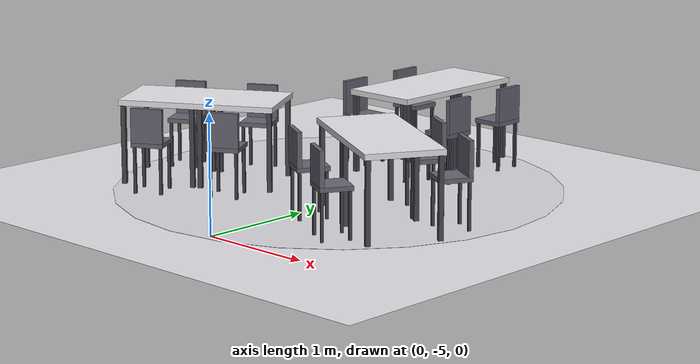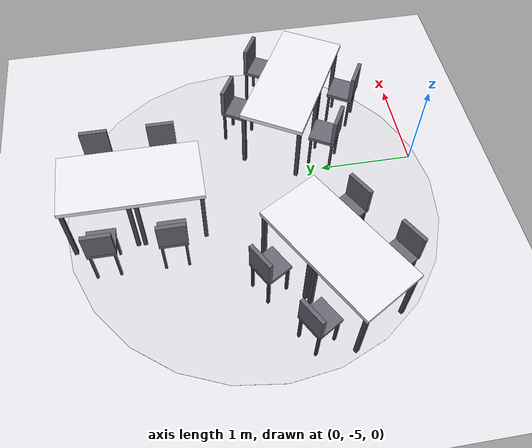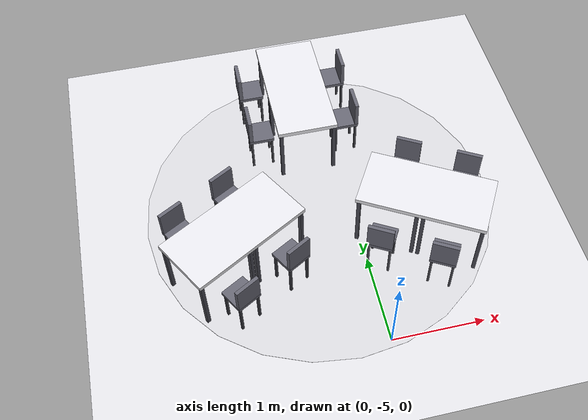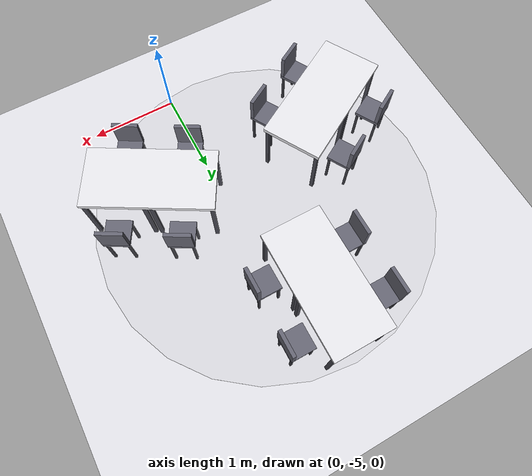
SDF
<sdf version="1.8">
 <world name="restaurant_blueprint_world">
  <model name="ground_plane">
   <static>true</static>
   <link name="link">
    <collision name="collision">
     <geometry><plane><normal>0 0 1</normal><size>120 120</size></plane></geometry>
    </collision>
    <visual name="visual">
     <geometry><plane><normal>0 0 1</normal><size>120 120</size></plane></geometry>
     <material>
      <ambient>0.88 0.88 0.90 1</ambient>
      <diffuse>0.88 0.88 0.90 1</diffuse>
      <specular>0.1 0.1 0.1 1</specular>
     </material>
    </visual>
   </link>
  </model>
  <model name="restaurant_boundary">
   <static>true</static>
   <link name="dining_cluster_circle">
    <visual name="virtual_circle_disc_vis">
     <pose>-0.349 -3.176 0.003 0 0 0</pose>
     <geometry><cylinder><radius>1.95</radius><length>0.002</length></cylinder></geometry>
     <material><ambient>0.84 0.84 0.86 1</ambient><diffuse>0.84 0.84 0.86 1</diffuse></material>
    </visual>
    <visual name="cluster_table_n_vis">
     <pose>-0.349 -1.986 0.725 0.0000 0.0000 0.0000</pose>
     <geometry><box><size>0.67 1.38 0.05</size></box></geometry>
     <material><ambient>0.85 0.85 0.88 1</ambient><diffuse>0.90 0.90 0.92 1</diffuse></material>
    </visual>
    <visual name="cluster_table_n_leg_1_vis">
     <pose>-0.049 -1.331 0.350 0 0 0.0000</pose>
     <geometry><box><size>0.04 0.04 0.70</size></box></geometry>
     <material><ambient>0.22 0.22 0.25 1</ambient><diffuse>0.28 0.28 0.32 1</diffuse></material>
    </visual>
    <visual name="cluster_table_n_leg_2_vis">
     <pose>-0.649 -1.331 0.350 0 0 0.0000</pose>
     <geometry><box><size>0.04 0.04 0.70</size></box></geometry>
     <material><ambient>0.22 0.22 0.25 1</ambient><diffuse>0.28 0.28 0.32 1</diffuse></material>
    </visual>
    <visual name="cluster_table_n_leg_3_vis">
     <pose>-0.049 -1.951 0.350 0 0 0.0000</pose>
     <geometry><box><size>0.04 0.04 0.70</size></box></geometry>
     <material><ambient>0.22 0.22 0.25 1</ambient><diffuse>0.28 0.28 0.32 1</diffuse></material>
    </visual>
    <visual name="cluster_table_n_leg_4_vis">
     <pose>-0.649 -1.951 0.350 0 0 0.0000</pose>
     <geometry><box><size>0.04 0.04 0.70</size></box></geometry>
     <material><ambient>0.22 0.22 0.25 1</ambient><diffuse>0.28 0.28 0.32 1</diffuse></material>
    </visual>
    <visual name="cluster_table_n_leg_5_vis">
     <pose>-0.049 -2.021 0.350 0 0 0.0000</pose>
     <geometry><box><size>0.04 0.04 0.70</size></box></geometry>
     <material><ambient>0.22 0.22 0.25 1</ambient><diffuse>0.28 0.28 0.32 1</diffuse></material>
    </visual>
    <visual name="cluster_table_n_leg_6_vis">
     <pose>-0.649 -2.021 0.350 0 0 0.0000</pose>
     <geometry><box><size>0.04 0.04 0.70</size></box></geometry>
     <material><ambient>0.22 0.22 0.25 1</ambient><diffuse>0.28 0.28 0.32 1</diffuse></material>
    </visual>
    <visual name="cluster_table_n_leg_7_vis">
     <pose>-0.049 -2.641 0.350 0 0 0.0000</pose>
     <geometry><box><size>0.04 0.04 0.70</size></box></geometry>
     <material><ambient>0.22 0.22 0.25 1</ambient><diffuse>0.28 0.28 0.32 1</diffuse></material>
    </visual>
    <visual name="cluster_table_n_leg_8_vis">
     <pose>-0.649 -2.641 0.350 0 0 0.0000</pose>
     <geometry><box><size>0.04 0.04 0.70</size></box></geometry>
     <material><ambient>0.22 0.22 0.25 1</ambient><diffuse>0.28 0.28 0.32 1</diffuse></material>
    </visual>
    <collision name="cluster_table_n_col">
     <pose>-0.349 -1.986 0.725 0.0000 0.0000 0.0000</pose>
     <geometry><box><size>0.67 1.38 0.05</size></box></geometry>
    </collision>
    <collision name="cluster_table_n_leg_1_col">
     <pose>-0.049 -1.331 0.350 0 0 0.0000</pose>
     <geometry><box><size>0.04 0.04 0.70</size></box></geometry>
    </collision>
    <collision name="cluster_table_n_leg_2_col">
     <pose>-0.649 -1.331 0.350 0 0 0.0000</pose>
     <geometry><box><size>0.04 0.04 0.70</size></box></geometry>
    </collision>
    <collision name="cluster_table_n_leg_3_col">
     <pose>-0.049 -1.951 0.350 0 0 0.0000</pose>
     <geometry><box><size>0.04 0.04 0.70</size></box></geometry>
    </collision>
    <collision name="cluster_table_n_leg_4_col">
     <pose>-0.649 -1.951 0.350 0 0 0.0000</pose>
     <geometry><box><size>0.04 0.04 0.70</size></box></geometry>
    </collision>
    <collision name="cluster_table_n_leg_5_col">
     <pose>-0.049 -2.021 0.350 0 0 0.0000</pose>
     <geometry><box><size>0.04 0.04 0.70</size></box></geometry>
    </collision>
    <collision name="cluster_table_n_leg_6_col">
     <pose>-0.649 -2.021 0.350 0 0 0.0000</pose>
     <geometry><box><size>0.04 0.04 0.70</size></box></geometry>
    </collision>
    <collision name="cluster_table_n_leg_7_col">
     <pose>-0.049 -2.641 0.350 0 0 0.0000</pose>
     <geometry><box><size>0.04 0.04 0.70</size></box></geometry>
    </collision>
    <collision name="cluster_table_n_leg_8_col">
     <pose>-0.649 -2.641 0.350 0 0 0.0000</pose>
     <geometry><box><size>0.04 0.04 0.70</size></box></geometry>
    </collision>
    <visual name="cluster_chair_n_e1_seat_vis">
     <pose>0.147 -1.651 0.430 0.0000 0.0000 0.0000</pose>
     <geometry><box><size>0.28 0.28 0.04</size></box></geometry>
     <material><ambient>0.30 0.30 0.33 1</ambient><diffuse>0.40 0.40 0.45 1</diffuse></material>
    </visual>
    <visual name="cluster_chair_n_e1_back_vis">
     <pose>0.267 -1.651 0.600 0 0 0.0000</pose>
     <geometry><box><size>0.04 0.28 0.30</size></box></geometry>
     <material><ambient>0.30 0.30 0.33 1</ambient><diffuse>0.40 0.40 0.45 1</diffuse></material>
    </visual>
    <visual name="cluster_chair_n_e1_leg_1_vis">
     <pose>0.262 -1.536 0.205 0 0 0.0000</pose>
     <geometry><box><size>0.025 0.025 0.41</size></box></geometry>
     <material><ambient>0.20 0.20 0.22 1</ambient><diffuse>0.25 0.25 0.28 1</diffuse></material>
    </visual>
    <visual name="cluster_chair_n_e1_leg_2_vis">
     <pose>0.032 -1.536 0.205 0 0 0.0000</pose>
     <geometry><box><size>0.025 0.025 0.41</size></box></geometry>
     <material><ambient>0.20 0.20 0.22 1</ambient><diffuse>0.25 0.25 0.28 1</diffuse></material>
    </visual>
    <visual name="cluster_chair_n_e1_leg_3_vis">
     <pose>0.262 -1.766 0.205 0 0 0.0000</pose>
     <geometry><box><size>0.025 0.025 0.41</size></box></geometry>
     <material><ambient>0.20 0.20 0.22 1</ambient><diffuse>0.25 0.25 0.28 1</diffuse></material>
    </visual>
    <visual name="cluster_chair_n_e1_leg_4_vis">
     <pose>0.032 -1.766 0.205 0 0 0.0000</pose>
     <geometry><box><size>0.025 0.025 0.41</size></box></geometry>
     <material><ambient>0.20 0.20 0.22 1</ambient><diffuse>0.25 0.25 0.28 1</diffuse></material>
    </visual>
    <collision name="cluster_chair_n_e1_seat_col">
     <pose>0.147 -1.651 0.430 0.0000 0.0000 0.0000</pose>
     <geometry><box><size>0.28 0.28 0.04</size></box></geometry>
    </collision>
    <collision name="cluster_chair_n_e1_back_col">
     <pose>0.267 -1.651 0.600 0 0 0.0000</pose>
     <geometry><box><size>0.04 0.28 0.30</size></box></geometry>
    </collision>
    <collision name="cluster_chair_n_e1_leg_1_col">
     <pose>0.262 -1.536 0.205 0 0 0.0000</pose>
     <geometry><box><size>0.025 0.025 0.41</size></box></geometry>
    </collision>
    <collision name="cluster_chair_n_e1_leg_2_col">
     <pose>0.032 -1.536 0.205 0 0 0.0000</pose>
     <geometry><box><size>0.025 0.025 0.41</size></box></geometry>
    </collision>
    <collision name="cluster_chair_n_e1_leg_3_col">
     <pose>0.262 -1.766 0.205 0 0 0.0000</pose>
     <geometry><box><size>0.025 0.025 0.41</size></box></geometry>
    </collision>
    <collision name="cluster_chair_n_e1_leg_4_col">
     <pose>0.032 -1.766 0.205 0 0 0.0000</pose>
     <geometry><box><size>0.025 0.025 0.41</size></box></geometry>
    </collision>
    <visual name="cluster_chair_n_e2_seat_vis">
     <pose>0.147 -2.321 0.430 0.0000 0.0000 0.0000</pose>
     <geometry><box><size>0.28 0.28 0.04</size></box></geometry>
     <material><ambient>0.30 0.30 0.33 1</ambient><diffuse>0.40 0.40 0.45 1</diffuse></material>
    </visual>
    <visual name="cluster_chair_n_e2_back_vis">
     <pose>0.267 -2.321 0.600 0 0 0.0000</pose>
     <geometry><box><size>0.04 0.28 0.30</size></box></geometry>
     <material><ambient>0.30 0.30 0.33 1</ambient><diffuse>0.40 0.40 0.45 1</diffuse></material>
    </visual>
    <visual name="cluster_chair_n_e2_leg_1_vis">
     <pose>0.262 -2.206 0.205 0 0 0.0000</pose>
     <geometry><box><size>0.025 0.025 0.41</size></box></geometry>
     <material><ambient>0.20 0.20 0.22 1</ambient><diffuse>0.25 0.25 0.28 1</diffuse></material>
    </visual>
    <visual name="cluster_chair_n_e2_leg_2_vis">
     <pose>0.032 -2.206 0.205 0 0 0.0000</pose>
     <geometry><box><size>0.025 0.025 0.41</size></box></geometry>
     <material><ambient>0.20 0.20 0.22 1</ambient><diffuse>0.25 0.25 0.28 1</diffuse></material>
    </visual>
    <visual name="cluster_chair_n_e2_leg_3_vis">
     <pose>0.262 -2.436 0.205 0 0 0.0000</pose>
     <geometry><box><size>0.025 0.025 0.41</size></box></geometry>
     <material><ambient>0.20 0.20 0.22 1</ambient><diffuse>0.25 0.25 0.28 1</diffuse></material>
    </visual>
    <visual name="cluster_chair_n_e2_leg_4_vis">
     <pose>0.032 -2.436 0.205 0 0 0.0000</pose>
     <geometry><box><size>0.025 0.025 0.41</size></box></geometry>
     <material><ambient>0.20 0.20 0.22 1</ambient><diffuse>0.25 0.25 0.28 1</diffuse></material>
    </visual>
    <collision name="cluster_chair_n_e2_seat_col">
     <pose>0.147 -2.321 0.430 0.0000 0.0000 0.0000</pose>
     <geometry><box><size>0.28 0.28 0.04</size></box></geometry>
    </collision>
    <collision name="cluster_chair_n_e2_back_col">
     <pose>0.267 -2.321 0.600 0 0 0.0000</pose>
     <geometry><box><size>0.04 0.28 0.30</size></box></geometry>
    </collision>
    <collision name="cluster_chair_n_e2_leg_1_col">
     <pose>0.262 -2.206 0.205 0 0 0.0000</pose>
     <geometry><box><size>0.025 0.025 0.41</size></box></geometry>
    </collision>
    <collision name="cluster_chair_n_e2_leg_2_col">
     <pose>0.032 -2.206 0.205 0 0 0.0000</pose>
     <geometry><box><size>0.025 0.025 0.41</size></box></geometry>
    </collision>
    <collision name="cluster_chair_n_e2_leg_3_col">
     <pose>0.262 -2.436 0.205 0 0 0.0000</pose>
     <geometry><box><size>0.025 0.025 0.41</size></box></geometry>
    </collision>
    <collision name="cluster_chair_n_e2_leg_4_col">
     <pose>0.032 -2.436 0.205 0 0 0.0000</pose>
     <geometry><box><size>0.025 0.025 0.41</size></box></geometry>
    </collision>
    <visual name="cluster_chair_n_w1_seat_vis">
     <pose>-0.845 -1.651 0.430 0.0000 0.0000 0.0000</pose>
     <geometry><box><size>0.28 0.28 0.04</size></box></geometry>
     <material><ambient>0.30 0.30 0.33 1</ambient><diffuse>0.40 0.40 0.45 1</diffuse></material>
    </visual>
    <visual name="cluster_chair_n_w1_back_vis">
     <pose>-0.965 -1.651 0.600 0 0 0.0000</pose>
     <geometry><box><size>0.04 0.28 0.30</size></box></geometry>
     <material><ambient>0.30 0.30 0.33 1</ambient><diffuse>0.40 0.40 0.45 1</diffuse></material>
    </visual>
    <visual name="cluster_chair_n_w1_leg_1_vis">
     <pose>-0.730 -1.536 0.205 0 0 0.0000</pose>
     <geometry><box><size>0.025 0.025 0.41</size></box></geometry>
     <material><ambient>0.20 0.20 0.22 1</ambient><diffuse>0.25 0.25 0.28 1</diffuse></material>
    </visual>
    <visual name="cluster_chair_n_w1_leg_2_vis">
     <pose>-0.960 -1.536 0.205 0 0 0.0000</pose>
     <geometry><box><size>0.025 0.025 0.41</size></box></geometry>
     <material><ambient>0.20 0.20 0.22 1</ambient><diffuse>0.25 0.25 0.28 1</diffuse></material>
    </visual>
    <visual name="cluster_chair_n_w1_leg_3_vis">
     <pose>-0.730 -1.766 0.205 0 0 0.0000</pose>
     <geometry><box><size>0.025 0.025 0.41</size></box></geometry>
     <material><ambient>0.20 0.20 0.22 1</ambient><diffuse>0.25 0.25 0.28 1</diffuse></material>
    </visual>
    <visual name="cluster_chair_n_w1_leg_4_vis">
     <pose>-0.960 -1.766 0.205 0 0 0.0000</pose>
     <geometry><box><size>0.025 0.025 0.41</size></box></geometry>
     <material><ambient>0.20 0.20 0.22 1</ambient><diffuse>0.25 0.25 0.28 1</diffuse></material>
    </visual>
    <collision name="cluster_chair_n_w1_seat_col">
     <pose>-0.845 -1.651 0.430 0.0000 0.0000 0.0000</pose>
     <geometry><box><size>0.28 0.28 0.04</size></box></geometry>
    </collision>
    <collision name="cluster_chair_n_w1_back_col">
     <pose>-0.965 -1.651 0.600 0 0 0.0000</pose>
     <geometry><box><size>0.04 0.28 0.30</size></box></geometry>
    </collision>
    <collision name="cluster_chair_n_w1_leg_1_col">
     <pose>-0.730 -1.536 0.205 0 0 0.0000</pose>
     <geometry><box><size>0.025 0.025 0.41</size></box></geometry>
    </collision>
    <collision name="cluster_chair_n_w1_leg_2_col">
     <pose>-0.960 -1.536 0.205 0 0 0.0000</pose>
     <geometry><box><size>0.025 0.025 0.41</size></box></geometry>
    </collision>
    <collision name="cluster_chair_n_w1_leg_3_col">
     <pose>-0.730 -1.766 0.205 0 0 0.0000</pose>
     <geometry><box><size>0.025 0.025 0.41</size></box></geometry>
    </collision>
    <collision name="cluster_chair_n_w1_leg_4_col">
     <pose>-0.960 -1.766 0.205 0 0 0.0000</pose>
     <geometry><box><size>0.025 0.025 0.41</size></box></geometry>
    </collision>
    <visual name="cluster_chair_n_w2_seat_vis">
     <pose>-0.845 -2.321 0.430 0.0000 0.0000 0.0000</pose>
     <geometry><box><size>0.28 0.28 0.04</size></box></geometry>
     <material><ambient>0.30 0.30 0.33 1</ambient><diffuse>0.40 0.40 0.45 1</diffuse></material>
    </visual>
    <visual name="cluster_chair_n_w2_back_vis">
     <pose>-0.965 -2.321 0.600 0 0 0.0000</pose>
     <geometry><box><size>0.04 0.28 0.30</size></box></geometry>
     <material><ambient>0.30 0.30 0.33 1</ambient><diffuse>0.40 0.40 0.45 1</diffuse></material>
    </visual>
    <visual name="cluster_chair_n_w2_leg_1_vis">
     <pose>-0.730 -2.206 0.205 0 0 0.0000</pose>
     <geometry><box><size>0.025 0.025 0.41</size></box></geometry>
     <material><ambient>0.20 0.20 0.22 1</ambient><diffuse>0.25 0.25 0.28 1</diffuse></material>
    </visual>
    <visual name="cluster_chair_n_w2_leg_2_vis">
     <pose>-0.960 -2.206 0.205 0 0 0.0000</pose>
     <geometry><box><size>0.025 0.025 0.41</size></box></geometry>
     <material><ambient>0.20 0.20 0.22 1</ambient><diffuse>0.25 0.25 0.28 1</diffuse></material>
    </visual>
    <visual name="cluster_chair_n_w2_leg_3_vis">
     <pose>-0.730 -2.436 0.205 0 0 0.0000</pose>
     <geometry><box><size>0.025 0.025 0.41</size></box></geometry>
     <material><ambient>0.20 0.20 0.22 1</ambient><diffuse>0.25 0.25 0.28 1</diffuse></material>
    </visual>
    <visual name="cluster_chair_n_w2_leg_4_vis">
     <pose>-0.960 -2.436 0.205 0 0 0.0000</pose>
     <geometry><box><size>0.025 0.025 0.41</size></box></geometry>
     <material><ambient>0.20 0.20 0.22 1</ambient><diffuse>0.25 0.25 0.28 1</diffuse></material>
    </visual>
    <collision name="cluster_chair_n_w2_seat_col">
     <pose>-0.845 -2.321 0.430 0.0000 0.0000 0.0000</pose>
     <geometry><box><size>0.28 0.28 0.04</size></box></geometry>
    </collision>
    <collision name="cluster_chair_n_w2_back_col">
     <pose>-0.965 -2.321 0.600 0 0 0.0000</pose>
     <geometry><box><size>0.04 0.28 0.30</size></box></geometry>
    </collision>
    <collision name="cluster_chair_n_w2_leg_1_col">
     <pose>-0.730 -2.206 0.205 0 0 0.0000</pose>
     <geometry><box><size>0.025 0.025 0.41</size></box></geometry>
    </collision>
    <collision name="cluster_chair_n_w2_leg_2_col">
     <pose>-0.960 -2.206 0.205 0 0 0.0000</pose>
     <geometry><box><size>0.025 0.025 0.41</size></box></geometry>
    </collision>
    <collision name="cluster_chair_n_w2_leg_3_col">
     <pose>-0.730 -2.436 0.205 0 0 0.0000</pose>
     <geometry><box><size>0.025 0.025 0.41</size></box></geometry>
    </collision>
    <collision name="cluster_chair_n_w2_leg_4_col">
     <pose>-0.960 -2.436 0.205 0 0 0.0000</pose>
     <geometry><box><size>0.025 0.025 0.41</size></box></geometry>
    </collision>
    <visual name="cluster_table_sw_vis">
     <pose>-1.380 -3.771 0.725 0.0000 0.0000 2.0944</pose>
     <geometry><box><size>0.67 1.38 0.05</size></box></geometry>
     <material><ambient>0.85 0.85 0.88 1</ambient><diffuse>0.90 0.90 0.92 1</diffuse></material>
    </visual>
    <visual name="cluster_table_sw_leg_1_vis">
     <pose>-2.097 -3.839 0.350 0 0 2.0944</pose>
     <geometry><box><size>0.04 0.04 0.70</size></box></geometry>
     <material><ambient>0.22 0.22 0.25 1</ambient><diffuse>0.28 0.28 0.32 1</diffuse></material>
    </visual>
    <visual name="cluster_table_sw_leg_2_vis">
     <pose>-1.797 -4.358 0.350 0 0 2.0944</pose>
     <geometry><box><size>0.04 0.04 0.70</size></box></geometry>
     <material><ambient>0.22 0.22 0.25 1</ambient><diffuse>0.28 0.28 0.32 1</diffuse></material>
    </visual>
    <visual name="cluster_table_sw_leg_3_vis">
     <pose>-1.560 -3.529 0.350 0 0 2.0944</pose>
     <geometry><box><size>0.04 0.04 0.70</size></box></geometry>
     <material><ambient>0.22 0.22 0.25 1</ambient><diffuse>0.28 0.28 0.32 1</diffuse></material>
    </visual>
    <visual name="cluster_table_sw_leg_4_vis">
     <pose>-1.260 -4.048 0.350 0 0 2.0944</pose>
     <geometry><box><size>0.04 0.04 0.70</size></box></geometry>
     <material><ambient>0.22 0.22 0.25 1</ambient><diffuse>0.28 0.28 0.32 1</diffuse></material>
    </visual>
    <visual name="cluster_table_sw_leg_5_vis">
     <pose>-1.500 -3.494 0.350 0 0 2.0944</pose>
     <geometry><box><size>0.04 0.04 0.70</size></box></geometry>
     <material><ambient>0.22 0.22 0.25 1</ambient><diffuse>0.28 0.28 0.32 1</diffuse></material>
    </visual>
    <visual name="cluster_table_sw_leg_6_vis">
     <pose>-1.200 -4.013 0.350 0 0 2.0944</pose>
     <geometry><box><size>0.04 0.04 0.70</size></box></geometry>
     <material><ambient>0.22 0.22 0.25 1</ambient><diffuse>0.28 0.28 0.32 1</diffuse></material>
    </visual>
    <visual name="cluster_table_sw_leg_7_vis">
     <pose>-0.963 -3.184 0.350 0 0 2.0944</pose>
     <geometry><box><size>0.04 0.04 0.70</size></box></geometry>
     <material><ambient>0.22 0.22 0.25 1</ambient><diffuse>0.28 0.28 0.32 1</diffuse></material>
    </visual>
    <visual name="cluster_table_sw_leg_8_vis">
     <pose>-0.663 -3.703 0.350 0 0 2.0944</pose>
     <geometry><box><size>0.04 0.04 0.70</size></box></geometry>
     <material><ambient>0.22 0.22 0.25 1</ambient><diffuse>0.28 0.28 0.32 1</diffuse></material>
    </visual>
    <collision name="cluster_table_sw_col">
     <pose>-1.380 -3.771 0.725 0.0000 0.0000 2.0944</pose>
     <geometry><box><size>0.67 1.38 0.05</size></box></geometry>
    </collision>
    <collision name="cluster_table_sw_leg_1_col">
     <pose>-2.097 -3.839 0.350 0 0 2.0944</pose>
     <geometry><box><size>0.04 0.04 0.70</size></box></geometry>
    </collision>
    <collision name="cluster_table_sw_leg_2_col">
     <pose>-1.797 -4.358 0.350 0 0 2.0944</pose>
     <geometry><box><size>0.04 0.04 0.70</size></box></geometry>
    </collision>
    <collision name="cluster_table_sw_leg_3_col">
     <pose>-1.560 -3.529 0.350 0 0 2.0944</pose>
     <geometry><box><size>0.04 0.04 0.70</size></box></geometry>
    </collision>
    <collision name="cluster_table_sw_leg_4_col">
     <pose>-1.260 -4.048 0.350 0 0 2.0944</pose>
     <geometry><box><size>0.04 0.04 0.70</size></box></geometry>
    </collision>
    <collision name="cluster_table_sw_leg_5_col">
     <pose>-1.500 -3.494 0.350 0 0 2.0944</pose>
     <geometry><box><size>0.04 0.04 0.70</size></box></geometry>
    </collision>
    <collision name="cluster_table_sw_leg_6_col">
     <pose>-1.200 -4.013 0.350 0 0 2.0944</pose>
     <geometry><box><size>0.04 0.04 0.70</size></box></geometry>
    </collision>
    <collision name="cluster_table_sw_leg_7_col">
     <pose>-0.963 -3.184 0.350 0 0 2.0944</pose>
     <geometry><box><size>0.04 0.04 0.70</size></box></geometry>
    </collision>
    <collision name="cluster_table_sw_leg_8_col">
     <pose>-0.663 -3.703 0.350 0 0 2.0944</pose>
     <geometry><box><size>0.04 0.04 0.70</size></box></geometry>
    </collision>
    <visual name="cluster_chair_sw_e1_seat_vis">
     <pose>-1.918 -3.509 0.430 0.0000 0.0000 2.0944</pose>
     <geometry><box><size>0.28 0.28 0.04</size></box></geometry>
     <material><ambient>0.30 0.30 0.33 1</ambient><diffuse>0.40 0.40 0.45 1</diffuse></material>
    </visual>
    <visual name="cluster_chair_sw_e1_back_vis">
     <pose>-1.978 -3.405 0.600 0 0 2.0944</pose>
     <geometry><box><size>0.04 0.28 0.30</size></box></geometry>
     <material><ambient>0.30 0.30 0.33 1</ambient><diffuse>0.40 0.40 0.45 1</diffuse></material>
    </visual>
    <visual name="cluster_chair_sw_e1_leg_1_vis">
     <pose>-2.075 -3.467 0.205 0 0 2.0944</pose>
     <geometry><box><size>0.025 0.025 0.41</size></box></geometry>
     <material><ambient>0.20 0.20 0.22 1</ambient><diffuse>0.25 0.25 0.28 1</diffuse></material>
    </visual>
    <visual name="cluster_chair_sw_e1_leg_2_vis">
     <pose>-1.960 -3.666 0.205 0 0 2.0944</pose>
     <geometry><box><size>0.025 0.025 0.41</size></box></geometry>
     <material><ambient>0.20 0.20 0.22 1</ambient><diffuse>0.25 0.25 0.28 1</diffuse></material>
    </visual>
    <visual name="cluster_chair_sw_e1_leg_3_vis">
     <pose>-1.876 -3.352 0.205 0 0 2.0944</pose>
     <geometry><box><size>0.025 0.025 0.41</size></box></geometry>
     <material><ambient>0.20 0.20 0.22 1</ambient><diffuse>0.25 0.25 0.28 1</diffuse></material>
    </visual>
    <visual name="cluster_chair_sw_e1_leg_4_vis">
     <pose>-1.761 -3.551 0.205 0 0 2.0944</pose>
     <geometry><box><size>0.025 0.025 0.41</size></box></geometry>
     <material><ambient>0.20 0.20 0.22 1</ambient><diffuse>0.25 0.25 0.28 1</diffuse></material>
    </visual>
    <collision name="cluster_chair_sw_e1_seat_col">
     <pose>-1.918 -3.509 0.430 0.0000 0.0000 2.0944</pose>
     <geometry><box><size>0.28 0.28 0.04</size></box></geometry>
    </collision>
    <collision name="cluster_chair_sw_e1_back_col">
     <pose>-1.978 -3.405 0.600 0 0 2.0944</pose>
     <geometry><box><size>0.04 0.28 0.30</size></box></geometry>
    </collision>
    <collision name="cluster_chair_sw_e1_leg_1_col">
     <pose>-2.075 -3.467 0.205 0 0 2.0944</pose>
     <geometry><box><size>0.025 0.025 0.41</size></box></geometry>
    </collision>
    <collision name="cluster_chair_sw_e1_leg_2_col">
     <pose>-1.960 -3.666 0.205 0 0 2.0944</pose>
     <geometry><box><size>0.025 0.025 0.41</size></box></geometry>
    </collision>
    <collision name="cluster_chair_sw_e1_leg_3_col">
     <pose>-1.876 -3.352 0.205 0 0 2.0944</pose>
     <geometry><box><size>0.025 0.025 0.41</size></box></geometry>
    </collision>
    <collision name="cluster_chair_sw_e1_leg_4_col">
     <pose>-1.761 -3.551 0.205 0 0 2.0944</pose>
     <geometry><box><size>0.025 0.025 0.41</size></box></geometry>
    </collision>
    <visual name="cluster_chair_sw_e2_seat_vis">
     <pose>-1.337 -3.174 0.430 0.0000 0.0000 2.0944</pose>
     <geometry><box><size>0.28 0.28 0.04</size></box></geometry>
     <material><ambient>0.30 0.30 0.33 1</ambient><diffuse>0.40 0.40 0.45 1</diffuse></material>
    </visual>
    <visual name="cluster_chair_sw_e2_back_vis">
     <pose>-1.397 -3.070 0.600 0 0 2.0944</pose>
     <geometry><box><size>0.04 0.28 0.30</size></box></geometry>
     <material><ambient>0.30 0.30 0.33 1</ambient><diffuse>0.40 0.40 0.45 1</diffuse></material>
    </visual>
    <visual name="cluster_chair_sw_e2_leg_1_vis">
     <pose>-1.494 -3.132 0.205 0 0 2.0944</pose>
     <geometry><box><size>0.025 0.025 0.41</size></box></geometry>
     <material><ambient>0.20 0.20 0.22 1</ambient><diffuse>0.25 0.25 0.28 1</diffuse></material>
    </visual>
    <visual name="cluster_chair_sw_e2_leg_2_vis">
     <pose>-1.379 -3.331 0.205 0 0 2.0944</pose>
     <geometry><box><size>0.025 0.025 0.41</size></box></geometry>
     <material><ambient>0.20 0.20 0.22 1</ambient><diffuse>0.25 0.25 0.28 1</diffuse></material>
    </visual>
    <visual name="cluster_chair_sw_e2_leg_3_vis">
     <pose>-1.295 -3.017 0.205 0 0 2.0944</pose>
     <geometry><box><size>0.025 0.025 0.41</size></box></geometry>
     <material><ambient>0.20 0.20 0.22 1</ambient><diffuse>0.25 0.25 0.28 1</diffuse></material>
    </visual>
    <visual name="cluster_chair_sw_e2_leg_4_vis">
     <pose>-1.180 -3.216 0.205 0 0 2.0944</pose>
     <geometry><box><size>0.025 0.025 0.41</size></box></geometry>
     <material><ambient>0.20 0.20 0.22 1</ambient><diffuse>0.25 0.25 0.28 1</diffuse></material>
    </visual>
    <collision name="cluster_chair_sw_e2_seat_col">
     <pose>-1.337 -3.174 0.430 0.0000 0.0000 2.0944</pose>
     <geometry><box><size>0.28 0.28 0.04</size></box></geometry>
    </collision>
    <collision name="cluster_chair_sw_e2_back_col">
     <pose>-1.397 -3.070 0.600 0 0 2.0944</pose>
     <geometry><box><size>0.04 0.28 0.30</size></box></geometry>
    </collision>
    <collision name="cluster_chair_sw_e2_leg_1_col">
     <pose>-1.494 -3.132 0.205 0 0 2.0944</pose>
     <geometry><box><size>0.025 0.025 0.41</size></box></geometry>
    </collision>
    <collision name="cluster_chair_sw_e2_leg_2_col">
     <pose>-1.379 -3.331 0.205 0 0 2.0944</pose>
     <geometry><box><size>0.025 0.025 0.41</size></box></geometry>
    </collision>
    <collision name="cluster_chair_sw_e2_leg_3_col">
     <pose>-1.295 -3.017 0.205 0 0 2.0944</pose>
     <geometry><box><size>0.025 0.025 0.41</size></box></geometry>
    </collision>
    <collision name="cluster_chair_sw_e2_leg_4_col">
     <pose>-1.180 -3.216 0.205 0 0 2.0944</pose>
     <geometry><box><size>0.025 0.025 0.41</size></box></geometry>
    </collision>
    <visual name="cluster_chair_sw_w1_seat_vis">
     <pose>-1.422 -4.368 0.430 0.0000 0.0000 2.0944</pose>
     <geometry><box><size>0.28 0.28 0.04</size></box></geometry>
     <material><ambient>0.30 0.30 0.33 1</ambient><diffuse>0.40 0.40 0.45 1</diffuse></material>
    </visual>
    <visual name="cluster_chair_sw_w1_back_vis">
     <pose>-1.362 -4.472 0.600 0 0 2.0944</pose>
     <geometry><box><size>0.04 0.28 0.30</size></box></geometry>
     <material><ambient>0.30 0.30 0.33 1</ambient><diffuse>0.40 0.40 0.45 1</diffuse></material>
    </visual>
    <visual name="cluster_chair_sw_w1_leg_1_vis">
     <pose>-1.579 -4.326 0.205 0 0 2.0944</pose>
     <geometry><box><size>0.025 0.025 0.41</size></box></geometry>
     <material><ambient>0.20 0.20 0.22 1</ambient><diffuse>0.25 0.25 0.28 1</diffuse></material>
    </visual>
    <visual name="cluster_chair_sw_w1_leg_2_vis">
     <pose>-1.464 -4.525 0.205 0 0 2.0944</pose>
     <geometry><box><size>0.025 0.025 0.41</size></box></geometry>
     <material><ambient>0.20 0.20 0.22 1</ambient><diffuse>0.25 0.25 0.28 1</diffuse></material>
    </visual>
    <visual name="cluster_chair_sw_w1_leg_3_vis">
     <pose>-1.380 -4.211 0.205 0 0 2.0944</pose>
     <geometry><box><size>0.025 0.025 0.41</size></box></geometry>
     <material><ambient>0.20 0.20 0.22 1</ambient><diffuse>0.25 0.25 0.28 1</diffuse></material>
    </visual>
    <visual name="cluster_chair_sw_w1_leg_4_vis">
     <pose>-1.265 -4.410 0.205 0 0 2.0944</pose>
     <geometry><box><size>0.025 0.025 0.41</size></box></geometry>
     <material><ambient>0.20 0.20 0.22 1</ambient><diffuse>0.25 0.25 0.28 1</diffuse></material>
    </visual>
    <collision name="cluster_chair_sw_w1_seat_col">
     <pose>-1.422 -4.368 0.430 0.0000 0.0000 2.0944</pose>
     <geometry><box><size>0.28 0.28 0.04</size></box></geometry>
    </collision>
    <collision name="cluster_chair_sw_w1_back_col">
     <pose>-1.362 -4.472 0.600 0 0 2.0944</pose>
     <geometry><box><size>0.04 0.28 0.30</size></box></geometry>
    </collision>
    <collision name="cluster_chair_sw_w1_leg_1_col">
     <pose>-1.579 -4.326 0.205 0 0 2.0944</pose>
     <geometry><box><size>0.025 0.025 0.41</size></box></geometry>
    </collision>
    <collision name="cluster_chair_sw_w1_leg_2_col">
     <pose>-1.464 -4.525 0.205 0 0 2.0944</pose>
     <geometry><box><size>0.025 0.025 0.41</size></box></geometry>
    </collision>
    <collision name="cluster_chair_sw_w1_leg_3_col">
     <pose>-1.380 -4.211 0.205 0 0 2.0944</pose>
     <geometry><box><size>0.025 0.025 0.41</size></box></geometry>
    </collision>
    <collision name="cluster_chair_sw_w1_leg_4_col">
     <pose>-1.265 -4.410 0.205 0 0 2.0944</pose>
     <geometry><box><size>0.025 0.025 0.41</size></box></geometry>
    </collision>
    <visual name="cluster_chair_sw_w2_seat_vis">
     <pose>-0.841 -4.033 0.430 0.0000 0.0000 2.0944</pose>
     <geometry><box><size>0.28 0.28 0.04</size></box></geometry>
     <material><ambient>0.30 0.30 0.33 1</ambient><diffuse>0.40 0.40 0.45 1</diffuse></material>
    </visual>
    <visual name="cluster_chair_sw_w2_back_vis">
     <pose>-0.781 -4.137 0.600 0 0 2.0944</pose>
     <geometry><box><size>0.04 0.28 0.30</size></box></geometry>
     <material><ambient>0.30 0.30 0.33 1</ambient><diffuse>0.40 0.40 0.45 1</diffuse></material>
    </visual>
    <visual name="cluster_chair_sw_w2_leg_1_vis">
     <pose>-0.998 -3.991 0.205 0 0 2.0944</pose>
     <geometry><box><size>0.025 0.025 0.41</size></box></geometry>
     <material><ambient>0.20 0.20 0.22 1</ambient><diffuse>0.25 0.25 0.28 1</diffuse></material>
    </visual>
    <visual name="cluster_chair_sw_w2_leg_2_vis">
     <pose>-0.883 -4.190 0.205 0 0 2.0944</pose>
     <geometry><box><size>0.025 0.025 0.41</size></box></geometry>
     <material><ambient>0.20 0.20 0.22 1</ambient><diffuse>0.25 0.25 0.28 1</diffuse></material>
    </visual>
    <visual name="cluster_chair_sw_w2_leg_3_vis">
     <pose>-0.799 -3.876 0.205 0 0 2.0944</pose>
     <geometry><box><size>0.025 0.025 0.41</size></box></geometry>
     <material><ambient>0.20 0.20 0.22 1</ambient><diffuse>0.25 0.25 0.28 1</diffuse></material>
    </visual>
    <visual name="cluster_chair_sw_w2_leg_4_vis">
     <pose>-0.684 -4.075 0.205 0 0 2.0944</pose>
     <geometry><box><size>0.025 0.025 0.41</size></box></geometry>
     <material><ambient>0.20 0.20 0.22 1</ambient><diffuse>0.25 0.25 0.28 1</diffuse></material>
    </visual>
    <collision name="cluster_chair_sw_w2_seat_col">
     <pose>-0.841 -4.033 0.430 0.0000 0.0000 2.0944</pose>
     <geometry><box><size>0.28 0.28 0.04</size></box></geometry>
    </collision>
    <collision name="cluster_chair_sw_w2_back_col">
     <pose>-0.781 -4.137 0.600 0 0 2.0944</pose>
     <geometry><box><size>0.04 0.28 0.30</size></box></geometry>
    </collision>
    <collision name="cluster_chair_sw_w2_leg_1_col">
     <pose>-0.998 -3.991 0.205 0 0 2.0944</pose>
     <geometry><box><size>0.025 0.025 0.41</size></box></geometry>
    </collision>
    <collision name="cluster_chair_sw_w2_leg_2_col">
     <pose>-0.883 -4.190 0.205 0 0 2.0944</pose>
     <geometry><box><size>0.025 0.025 0.41</size></box></geometry>
    </collision>
    <collision name="cluster_chair_sw_w2_leg_3_col">
     <pose>-0.799 -3.876 0.205 0 0 2.0944</pose>
     <geometry><box><size>0.025 0.025 0.41</size></box></geometry>
    </collision>
    <collision name="cluster_chair_sw_w2_leg_4_col">
     <pose>-0.684 -4.075 0.205 0 0 2.0944</pose>
     <geometry><box><size>0.025 0.025 0.41</size></box></geometry>
    </collision>
    <visual name="cluster_table_se_vis">
     <pose>0.682 -3.771 0.725 0.0000 0.0000 -2.0944</pose>
     <geometry><box><size>0.67 1.38 0.05</size></box></geometry>
     <material><ambient>0.85 0.85 0.88 1</ambient><diffuse>0.90 0.90 0.92 1</diffuse></material>
    </visual>
    <visual name="cluster_table_se_leg_1_vis">
     <pose>1.099 -4.358 0.350 0 0 -2.0944</pose>
     <geometry><box><size>0.04 0.04 0.70</size></box></geometry>
     <material><ambient>0.22 0.22 0.25 1</ambient><diffuse>0.28 0.28 0.32 1</diffuse></material>
    </visual>
    <visual name="cluster_table_se_leg_2_vis">
     <pose>1.399 -3.839 0.350 0 0 -2.0944</pose>
     <geometry><box><size>0.04 0.04 0.70</size></box></geometry>
     <material><ambient>0.22 0.22 0.25 1</ambient><diffuse>0.28 0.28 0.32 1</diffuse></material>
    </visual>
    <visual name="cluster_table_se_leg_3_vis">
     <pose>0.562 -4.048 0.350 0 0 -2.0944</pose>
     <geometry><box><size>0.04 0.04 0.70</size></box></geometry>
     <material><ambient>0.22 0.22 0.25 1</ambient><diffuse>0.28 0.28 0.32 1</diffuse></material>
    </visual>
    <visual name="cluster_table_se_leg_4_vis">
     <pose>0.862 -3.529 0.350 0 0 -2.0944</pose>
     <geometry><box><size>0.04 0.04 0.70</size></box></geometry>
     <material><ambient>0.22 0.22 0.25 1</ambient><diffuse>0.28 0.28 0.32 1</diffuse></material>
    </visual>
    <visual name="cluster_table_se_leg_5_vis">
     <pose>0.502 -4.013 0.350 0 0 -2.0944</pose>
     <geometry><box><size>0.04 0.04 0.70</size></box></geometry>
     <material><ambient>0.22 0.22 0.25 1</ambient><diffuse>0.28 0.28 0.32 1</diffuse></material>
    </visual>
    <visual name="cluster_table_se_leg_6_vis">
     <pose>0.802 -3.494 0.350 0 0 -2.0944</pose>
     <geometry><box><size>0.04 0.04 0.70</size></box></geometry>
     <material><ambient>0.22 0.22 0.25 1</ambient><diffuse>0.28 0.28 0.32 1</diffuse></material>
    </visual>
    <visual name="cluster_table_se_leg_7_vis">
     <pose>-0.035 -3.703 0.350 0 0 -2.0944</pose>
     <geometry><box><size>0.04 0.04 0.70</size></box></geometry>
     <material><ambient>0.22 0.22 0.25 1</ambient><diffuse>0.28 0.28 0.32 1</diffuse></material>
    </visual>
    <visual name="cluster_table_se_leg_8_vis">
     <pose>0.265 -3.184 0.350 0 0 -2.0944</pose>
     <geometry><box><size>0.04 0.04 0.70</size></box></geometry>
     <material><ambient>0.22 0.22 0.25 1</ambient><diffuse>0.28 0.28 0.32 1</diffuse></material>
    </visual>
    <collision name="cluster_table_se_col">
     <pose>0.682 -3.771 0.725 0.0000 0.0000 -2.0944</pose>
     <geometry><box><size>0.67 1.38 0.05</size></box></geometry>
    </collision>
    <collision name="cluster_table_se_leg_1_col">
     <pose>1.099 -4.358 0.350 0 0 -2.0944</pose>
     <geometry><box><size>0.04 0.04 0.70</size></box></geometry>
    </collision>
    <collision name="cluster_table_se_leg_2_col">
     <pose>1.399 -3.839 0.350 0 0 -2.0944</pose>
     <geometry><box><size>0.04 0.04 0.70</size></box></geometry>
    </collision>
    <collision name="cluster_table_se_leg_3_col">
     <pose>0.562 -4.048 0.350 0 0 -2.0944</pose>
     <geometry><box><size>0.04 0.04 0.70</size></box></geometry>
    </collision>
    <collision name="cluster_table_se_leg_4_col">
     <pose>0.862 -3.529 0.350 0 0 -2.0944</pose>
     <geometry><box><size>0.04 0.04 0.70</size></box></geometry>
    </collision>
    <collision name="cluster_table_se_leg_5_col">
     <pose>0.502 -4.013 0.350 0 0 -2.0944</pose>
     <geometry><box><size>0.04 0.04 0.70</size></box></geometry>
    </collision>
    <collision name="cluster_table_se_leg_6_col">
     <pose>0.802 -3.494 0.350 0 0 -2.0944</pose>
     <geometry><box><size>0.04 0.04 0.70</size></box></geometry>
    </collision>
    <collision name="cluster_table_se_leg_7_col">
     <pose>-0.035 -3.703 0.350 0 0 -2.0944</pose>
     <geometry><box><size>0.04 0.04 0.70</size></box></geometry>
    </collision>
    <collision name="cluster_table_se_leg_8_col">
     <pose>0.265 -3.184 0.350 0 0 -2.0944</pose>
     <geometry><box><size>0.04 0.04 0.70</size></box></geometry>
    </collision>
    <visual name="cluster_chair_se_e1_seat_vis">
     <pose>0.724 -4.368 0.430 0.0000 0.0000 -2.0944</pose>
     <geometry><box><size>0.28 0.28 0.04</size></box></geometry>
     <material><ambient>0.30 0.30 0.33 1</ambient><diffuse>0.40 0.40 0.45 1</diffuse></material>
    </visual>
    <visual name="cluster_chair_se_e1_back_vis">
     <pose>0.664 -4.472 0.600 0 0 -2.0944</pose>
     <geometry><box><size>0.04 0.28 0.30</size></box></geometry>
     <material><ambient>0.30 0.30 0.33 1</ambient><diffuse>0.40 0.40 0.45 1</diffuse></material>
    </visual>
    <visual name="cluster_chair_se_e1_leg_1_vis">
     <pose>0.766 -4.525 0.205 0 0 -2.0944</pose>
     <geometry><box><size>0.025 0.025 0.41</size></box></geometry>
     <material><ambient>0.20 0.20 0.22 1</ambient><diffuse>0.25 0.25 0.28 1</diffuse></material>
    </visual>
    <visual name="cluster_chair_se_e1_leg_2_vis">
     <pose>0.881 -4.326 0.205 0 0 -2.0944</pose>
     <geometry><box><size>0.025 0.025 0.41</size></box></geometry>
     <material><ambient>0.20 0.20 0.22 1</ambient><diffuse>0.25 0.25 0.28 1</diffuse></material>
    </visual>
    <visual name="cluster_chair_se_e1_leg_3_vis">
     <pose>0.567 -4.410 0.205 0 0 -2.0944</pose>
     <geometry><box><size>0.025 0.025 0.41</size></box></geometry>
     <material><ambient>0.20 0.20 0.22 1</ambient><diffuse>0.25 0.25 0.28 1</diffuse></material>
    </visual>
    <visual name="cluster_chair_se_e1_leg_4_vis">
     <pose>0.682 -4.211 0.205 0 0 -2.0944</pose>
     <geometry><box><size>0.025 0.025 0.41</size></box></geometry>
     <material><ambient>0.20 0.20 0.22 1</ambient><diffuse>0.25 0.25 0.28 1</diffuse></material>
    </visual>
    <collision name="cluster_chair_se_e1_seat_col">
     <pose>0.724 -4.368 0.430 0.0000 0.0000 -2.0944</pose>
     <geometry><box><size>0.28 0.28 0.04</size></box></geometry>
    </collision>
    <collision name="cluster_chair_se_e1_back_col">
     <pose>0.664 -4.472 0.600 0 0 -2.0944</pose>
     <geometry><box><size>0.04 0.28 0.30</size></box></geometry>
    </collision>
    <collision name="cluster_chair_se_e1_leg_1_col">
     <pose>0.766 -4.525 0.205 0 0 -2.0944</pose>
     <geometry><box><size>0.025 0.025 0.41</size></box></geometry>
    </collision>
    <collision name="cluster_chair_se_e1_leg_2_col">
     <pose>0.881 -4.326 0.205 0 0 -2.0944</pose>
     <geometry><box><size>0.025 0.025 0.41</size></box></geometry>
    </collision>
    <collision name="cluster_chair_se_e1_leg_3_col">
     <pose>0.567 -4.410 0.205 0 0 -2.0944</pose>
     <geometry><box><size>0.025 0.025 0.41</size></box></geometry>
    </collision>
    <collision name="cluster_chair_se_e1_leg_4_col">
     <pose>0.682 -4.211 0.205 0 0 -2.0944</pose>
     <geometry><box><size>0.025 0.025 0.41</size></box></geometry>
    </collision>
    <visual name="cluster_chair_se_e2_seat_vis">
     <pose>0.143 -4.033 0.430 0.0000 0.0000 -2.0944</pose>
     <geometry><box><size>0.28 0.28 0.04</size></box></geometry>
     <material><ambient>0.30 0.30 0.33 1</ambient><diffuse>0.40 0.40 0.45 1</diffuse></material>
    </visual>
    <visual name="cluster_chair_se_e2_back_vis">
     <pose>0.083 -4.137 0.600 0 0 -2.0944</pose>
     <geometry><box><size>0.04 0.28 0.30</size></box></geometry>
     <material><ambient>0.30 0.30 0.33 1</ambient><diffuse>0.40 0.40 0.45 1</diffuse></material>
    </visual>
    <visual name="cluster_chair_se_e2_leg_1_vis">
     <pose>0.185 -4.190 0.205 0 0 -2.0944</pose>
     <geometry><box><size>0.025 0.025 0.41</size></box></geometry>
     <material><ambient>0.20 0.20 0.22 1</ambient><diffuse>0.25 0.25 0.28 1</diffuse></material>
    </visual>
    <visual name="cluster_chair_se_e2_leg_2_vis">
     <pose>0.300 -3.991 0.205 0 0 -2.0944</pose>
     <geometry><box><size>0.025 0.025 0.41</size></box></geometry>
     <material><ambient>0.20 0.20 0.22 1</ambient><diffuse>0.25 0.25 0.28 1</diffuse></material>
    </visual>
    <visual name="cluster_chair_se_e2_leg_3_vis">
     <pose>-0.014 -4.075 0.205 0 0 -2.0944</pose>
     <geometry><box><size>0.025 0.025 0.41</size></box></geometry>
     <material><ambient>0.20 0.20 0.22 1</ambient><diffuse>0.25 0.25 0.28 1</diffuse></material>
    </visual>
    <visual name="cluster_chair_se_e2_leg_4_vis">
     <pose>0.101 -3.876 0.205 0 0 -2.0944</pose>
     <geometry><box><size>0.025 0.025 0.41</size></box></geometry>
     <material><ambient>0.20 0.20 0.22 1</ambient><diffuse>0.25 0.25 0.28 1</diffuse></material>
    </visual>
    <collision name="cluster_chair_se_e2_seat_col">
     <pose>0.143 -4.033 0.430 0.0000 0.0000 -2.0944</pose>
     <geometry><box><size>0.28 0.28 0.04</size></box></geometry>
    </collision>
    <collision name="cluster_chair_se_e2_back_col">
     <pose>0.083 -4.137 0.600 0 0 -2.0944</pose>
     <geometry><box><size>0.04 0.28 0.30</size></box></geometry>
    </collision>
    <collision name="cluster_chair_se_e2_leg_1_col">
     <pose>0.185 -4.190 0.205 0 0 -2.0944</pose>
     <geometry><box><size>0.025 0.025 0.41</size></box></geometry>
    </collision>
    <collision name="cluster_chair_se_e2_leg_2_col">
     <pose>0.300 -3.991 0.205 0 0 -2.0944</pose>
     <geometry><box><size>0.025 0.025 0.41</size></box></geometry>
    </collision>
    <collision name="cluster_chair_se_e2_leg_3_col">
     <pose>-0.014 -4.075 0.205 0 0 -2.0944</pose>
     <geometry><box><size>0.025 0.025 0.41</size></box></geometry>
    </collision>
    <collision name="cluster_chair_se_e2_leg_4_col">
     <pose>0.101 -3.876 0.205 0 0 -2.0944</pose>
     <geometry><box><size>0.025 0.025 0.41</size></box></geometry>
    </collision>
    <visual name="cluster_chair_se_w1_seat_vis">
     <pose>1.220 -3.509 0.430 0.0000 0.0000 -2.0944</pose>
     <geometry><box><size>0.28 0.28 0.04</size></box></geometry>
     <material><ambient>0.30 0.30 0.33 1</ambient><diffuse>0.40 0.40 0.45 1</diffuse></material>
    </visual>
    <visual name="cluster_chair_se_w1_back_vis">
     <pose>1.280 -3.405 0.600 0 0 -2.0944</pose>
     <geometry><box><size>0.04 0.28 0.30</size></box></geometry>
     <material><ambient>0.30 0.30 0.33 1</ambient><diffuse>0.40 0.40 0.45 1</diffuse></material>
    </visual>
    <visual name="cluster_chair_se_w1_leg_1_vis">
     <pose>1.262 -3.666 0.205 0 0 -2.0944</pose>
     <geometry><box><size>0.025 0.025 0.41</size></box></geometry>
     <material><ambient>0.20 0.20 0.22 1</ambient><diffuse>0.25 0.25 0.28 1</diffuse></material>
    </visual>
    <visual name="cluster_chair_se_w1_leg_2_vis">
     <pose>1.377 -3.467 0.205 0 0 -2.0944</pose>
     <geometry><box><size>0.025 0.025 0.41</size></box></geometry>
     <material><ambient>0.20 0.20 0.22 1</ambient><diffuse>0.25 0.25 0.28 1</diffuse></material>
    </visual>
    <visual name="cluster_chair_se_w1_leg_3_vis">
     <pose>1.063 -3.551 0.205 0 0 -2.0944</pose>
     <geometry><box><size>0.025 0.025 0.41</size></box></geometry>
     <material><ambient>0.20 0.20 0.22 1</ambient><diffuse>0.25 0.25 0.28 1</diffuse></material>
    </visual>
    <visual name="cluster_chair_se_w1_leg_4_vis">
     <pose>1.178 -3.352 0.205 0 0 -2.0944</pose>
     <geometry><box><size>0.025 0.025 0.41</size></box></geometry>
     <material><ambient>0.20 0.20 0.22 1</ambient><diffuse>0.25 0.25 0.28 1</diffuse></material>
    </visual>
    <collision name="cluster_chair_se_w1_seat_col">
     <pose>1.220 -3.509 0.430 0.0000 0.0000 -2.0944</pose>
     <geometry><box><size>0.28 0.28 0.04</size></box></geometry>
    </collision>
    <collision name="cluster_chair_se_w1_back_col">
     <pose>1.280 -3.405 0.600 0 0 -2.0944</pose>
     <geometry><box><size>0.04 0.28 0.30</size></box></geometry>
    </collision>
    <collision name="cluster_chair_se_w1_leg_1_col">
     <pose>1.262 -3.666 0.205 0 0 -2.0944</pose>
     <geometry><box><size>0.025 0.025 0.41</size></box></geometry>
    </collision>
    <collision name="cluster_chair_se_w1_leg_2_col">
     <pose>1.377 -3.467 0.205 0 0 -2.0944</pose>
     <geometry><box><size>0.025 0.025 0.41</size></box></geometry>
    </collision>
    <collision name="cluster_chair_se_w1_leg_3_col">
     <pose>1.063 -3.551 0.205 0 0 -2.0944</pose>
     <geometry><box><size>0.025 0.025 0.41</size></box></geometry>
    </collision>
    <collision name="cluster_chair_se_w1_leg_4_col">
     <pose>1.178 -3.352 0.205 0 0 -2.0944</pose>
     <geometry><box><size>0.025 0.025 0.41</size></box></geometry>
    </collision>
    <visual name="cluster_chair_se_w2_seat_vis">
     <pose>0.639 -3.174 0.430 0.0000 0.0000 -2.0944</pose>
     <geometry><box><size>0.28 0.28 0.04</size></box></geometry>
     <material><ambient>0.30 0.30 0.33 1</ambient><diffuse>0.40 0.40 0.45 1</diffuse></material>
    </visual>
    <visual name="cluster_chair_se_w2_back_vis">
     <pose>0.699 -3.070 0.600 0 0 -2.0944</pose>
     <geometry><box><size>0.04 0.28 0.30</size></box></geometry>
     <material><ambient>0.30 0.30 0.33 1</ambient><diffuse>0.40 0.40 0.45 1</diffuse></material>
    </visual>
    <visual name="cluster_chair_se_w2_leg_1_vis">
     <pose>0.681 -3.331 0.205 0 0 -2.0944</pose>
     <geometry><box><size>0.025 0.025 0.41</size></box></geometry>
     <material><ambient>0.20 0.20 0.22 1</ambient><diffuse>0.25 0.25 0.28 1</diffuse></material>
    </visual>
    <visual name="cluster_chair_se_w2_leg_2_vis">
     <pose>0.796 -3.132 0.205 0 0 -2.0944</pose>
     <geometry><box><size>0.025 0.025 0.41</size></box></geometry>
     <material><ambient>0.20 0.20 0.22 1</ambient><diffuse>0.25 0.25 0.28 1</diffuse></material>
    </visual>
    <visual name="cluster_chair_se_w2_leg_3_vis">
     <pose>0.482 -3.216 0.205 0 0 -2.0944</pose>
     <geometry><box><size>0.025 0.025 0.41</size></box></geometry>
     <material><ambient>0.20 0.20 0.22 1</ambient><diffuse>0.25 0.25 0.28 1</diffuse></material>
    </visual>
    <visual name="cluster_chair_se_w2_leg_4_vis">
     <pose>0.597 -3.017 0.205 0 0 -2.0944</pose>
     <geometry><box><size>0.025 0.025 0.41</size></box></geometry>
     <material><ambient>0.20 0.20 0.22 1</ambient><diffuse>0.25 0.25 0.28 1</diffuse></material>
    </visual>
    <collision name="cluster_chair_se_w2_seat_col">
     <pose>0.639 -3.174 0.430 0.0000 0.0000 -2.0944</pose>
     <geometry><box><size>0.28 0.28 0.04</size></box></geometry>
    </collision>
    <collision name="cluster_chair_se_w2_back_col">
     <pose>0.699 -3.070 0.600 0 0 -2.0944</pose>
     <geometry><box><size>0.04 0.28 0.30</size></box></geometry>
    </collision>
    <collision name="cluster_chair_se_w2_leg_1_col">
     <pose>0.681 -3.331 0.205 0 0 -2.0944</pose>
     <geometry><box><size>0.025 0.025 0.41</size></box></geometry>
    </collision>
    <collision name="cluster_chair_se_w2_leg_2_col">
     <pose>0.796 -3.132 0.205 0 0 -2.0944</pose>
     <geometry><box><size>0.025 0.025 0.41</size></box></geometry>
    </collision>
    <collision name="cluster_chair_se_w2_leg_3_col">
     <pose>0.482 -3.216 0.205 0 0 -2.0944</pose>
     <geometry><box><size>0.025 0.025 0.41</size></box></geometry>
    </collision>
    <collision name="cluster_chair_se_w2_leg_4_col">
     <pose>0.597 -3.017 0.205 0 0 -2.0944</pose>
     <geometry><box><size>0.025 0.025 0.41</size></box></geometry>
    </collision>
   </link>
  </model>
 </world>
</sdf>
